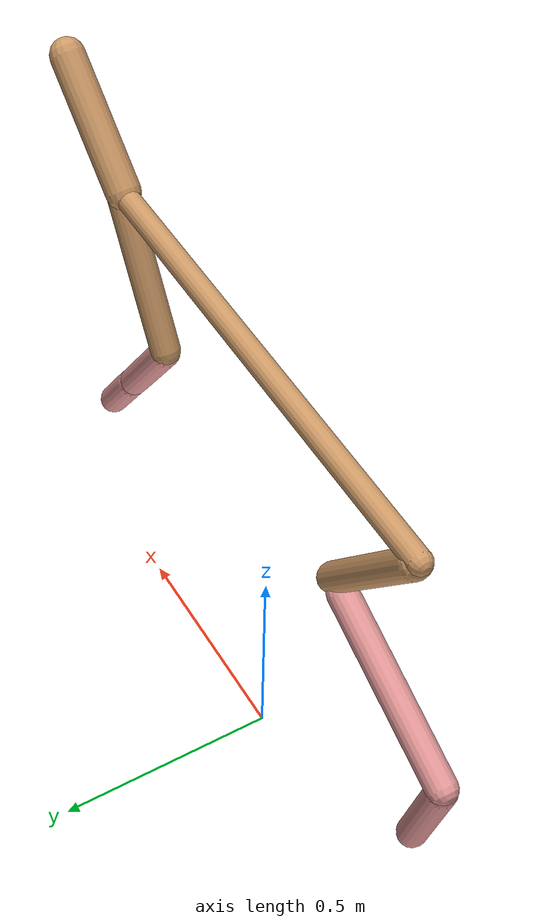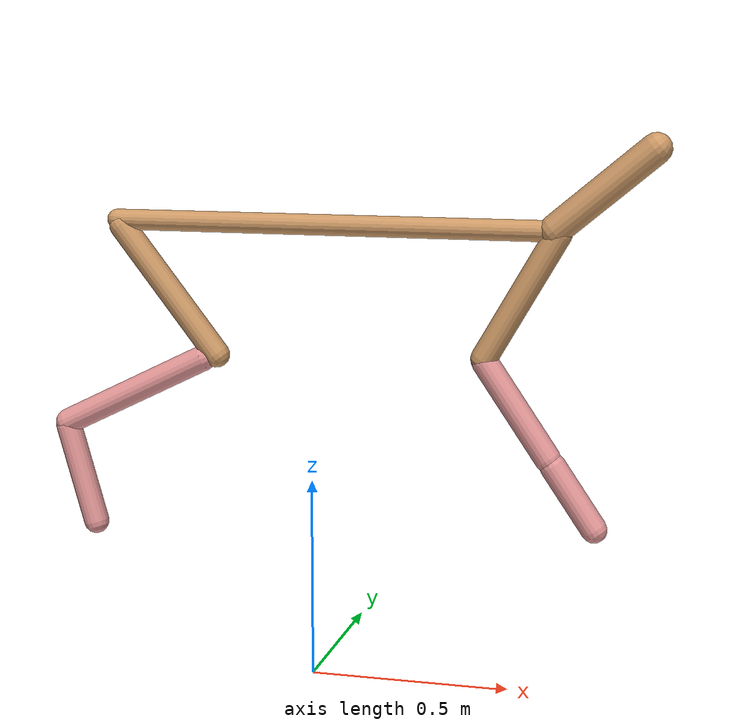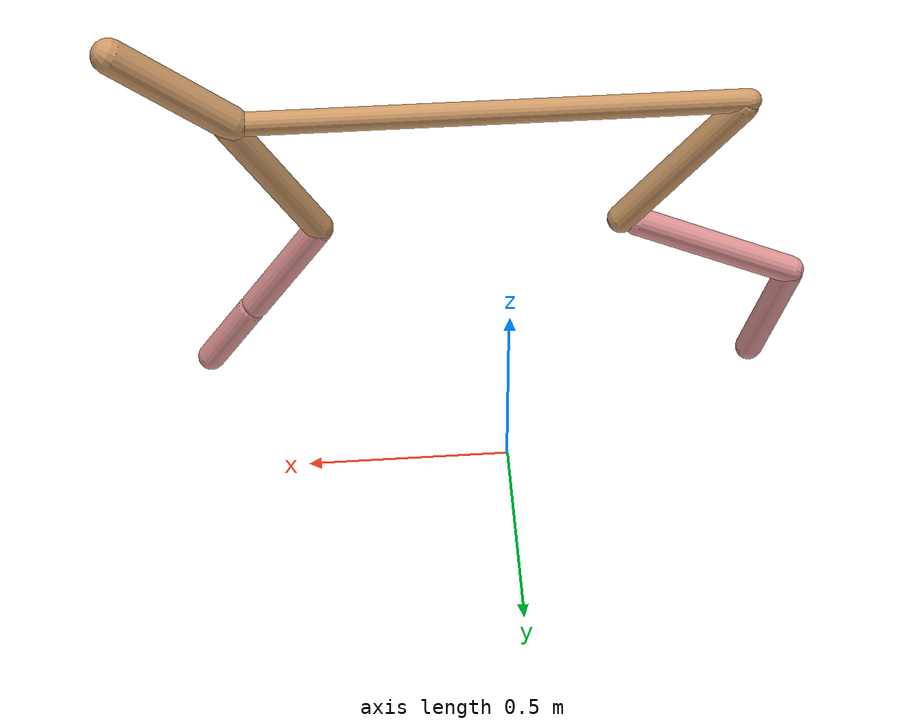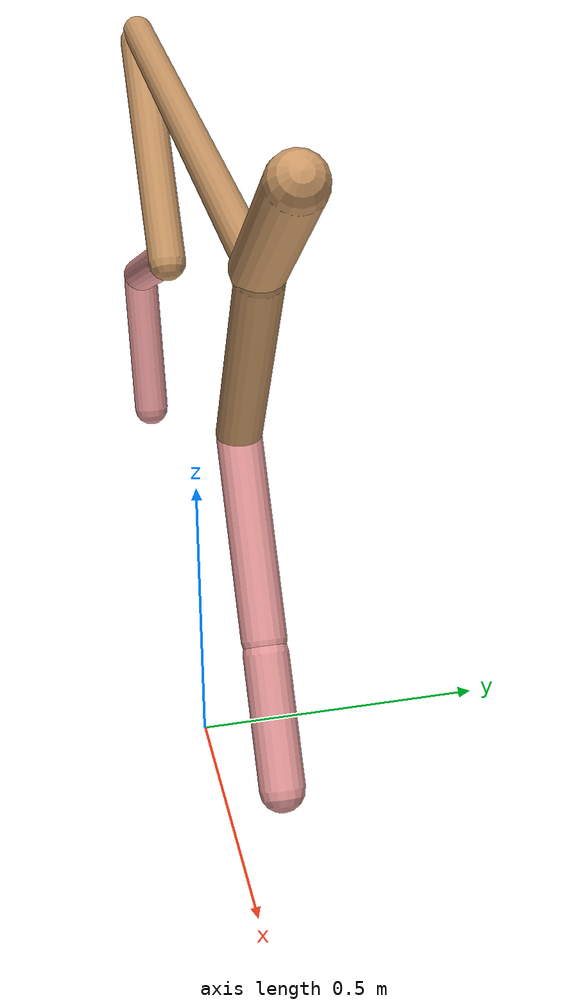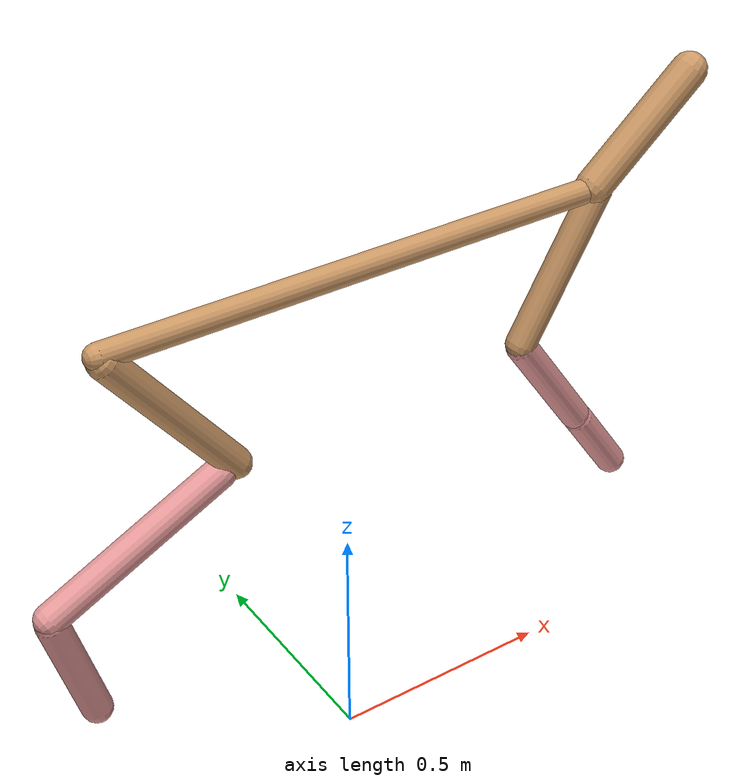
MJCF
<mujoco model="cheetah">
  <compiler angle="radian" coordinate="local" inertiafromgeom="true" settotalmass="14" />
  <default>
    <joint armature=".1" damping=".01" limited="true" solimplimit="0 .8 .03" solreflimit=".02 1" stiffness="8" />
    <geom conaffinity="0" condim="3" contype="1" friction="0.8 .1 .1" rgba="0.8 0.6 .4 1" solimp="0.0 0.8 0.01" solref="0.02 1" />
    <motor ctrllimited="true" ctrlrange="-1 1" />
  </default>
  <size nstack="300000" nuser_geom="1" />
  <option gravity="0 0 -9.81" timestep="0.01" />
  <worldbody>
    <body name="torso" pos="0.0 0.0 1.139721524177348">
      <joint armature="0" axis="1 0 0" damping="0" limited="false" name="ignorex" pos="0 0 0" stiffness="0" type="slide" />
      <joint armature="0" axis="0 0 1" damping="0" limited="false" name="ignorez" pos="0 0 0" stiffness="0" type="slide" />
      <joint armature="0" axis="0 1 0" damping="0" limited="false" name="ignorey" pos="0 0 0" stiffness="0" type="hinge" />
      <geom fromto="-0.5 0.0 0.0 0.606926717129903 0.0 0.0" name="torso" size="0.025608007414239298" type="capsule" />
      <geom axisangle="0 1 0 .87" name="head" pos="0.7069267171299031 0.0 0.1" size="0.03743580840344256 0.15" type="capsule" />

      <body name="bthigh" pos="-.5 0 0">
        <joint axis="0 1 0" damping="6" name="bthigh" pos="0 0 0" range="-.52 1.05" stiffness="240" type="hinge" />
        <geom axisangle="0 1 0 -3.8" name="bthigh" pos="0.13294485341939222 0.0 -0.17282830944520988" size="0.0322 0.19903357712348768" type="capsule" />
        <body name="bshin" pos="0.22588970683878443 0.0 -0.33565661889041976">
          <joint axis="0 1 0" damping="4.5" name="bshin" pos="0 0 0" range="-.785 .785" stiffness="180" type="hinge" />
          <geom axisangle="0 1 0 -2.03" name="bshin" pos="-0.18999562131679837 0.0 -0.09499781065839918" rgba="0.9 0.6 0.6 1" size="0.0322 0.20589680392084933" type="capsule" />
          <body name="bfoot" pos="-0.37999124263359674 0.0 -0.18999562131679837">
            <joint axis="0 1 0" damping="3" name="bfoot" pos="0 0 0" range="-.4 .785" stiffness="120" type="hinge" />
            <geom axisangle="0 1 0 -.27" name="bfoot" pos="0.040349909584479426 0.0 -0.1304647076564835" rgba="0.9 0.6 0.6 1" size="0.0322 0.12902866379039893" type="capsule" />
            <inertial mass="10" />
          </body>
        </body>
      </body>
      <body name="fthigh" pos="0.6069267171299031 0.0 0.0">
        <joint axis="0 1 0" damping="4.5" name="fthigh" pos="0 0 0" range="-1.5 0.8" stiffness="180" type="hinge" />
        <geom axisangle="0 1 0 .52" name="fthigh" pos="-0.09172139525694742 0.0 -0.15723667758333842" size="0.0322 0.1761090381399775" type="capsule" />
        <body name="fshin" pos="-0.18344279051389484 0.0 -0.31447335516667685">
          <joint axis="0 1 0" damping="3" name="fshin" pos="0 0 0" range="-1.2 1.1" stiffness="120" type="hinge" />
          <geom axisangle="0 1 0 -.6" name="fshin" pos="0.08511603811522511 0.0 -0.11785297585185014" rgba="0.9 0.6 0.6 1" size="0.0322 0.14035757926945575" type="capsule" />
          <body name="ffoot" pos="0.17023207623045022 0.0 -0.2357059517037003">
            <joint axis="0 1 0" damping="1.5" name="ffoot" pos="0 0 0" range="-3.1 -0.3" stiffness="60" type="hinge" />
            <geom axisangle="0 1 0 -.6" name="ffoot" pos="0.057269231383376834 0.0 -0.08908547104080841" rgba="0.9 0.6 0.6 1" size="0.0322 0.09268896744209343" type="capsule" />
            <inertial mass="10" />
          </body>
        </body>
      </body>
    </body>
  </worldbody>
  <actuator>
    <motor gear="120" joint="bthigh" name="bthigh" />
    <motor gear="90" joint="bshin" name="bshin" />
    <motor gear="60" joint="bfoot" name="bfoot" />
    <motor gear="120" joint="fthigh" name="fthigh" />
    <motor gear="60" joint="fshin" name="fshin" />
    <motor gear="30" joint="ffoot" name="ffoot" />
  </actuator>
</mujoco>
